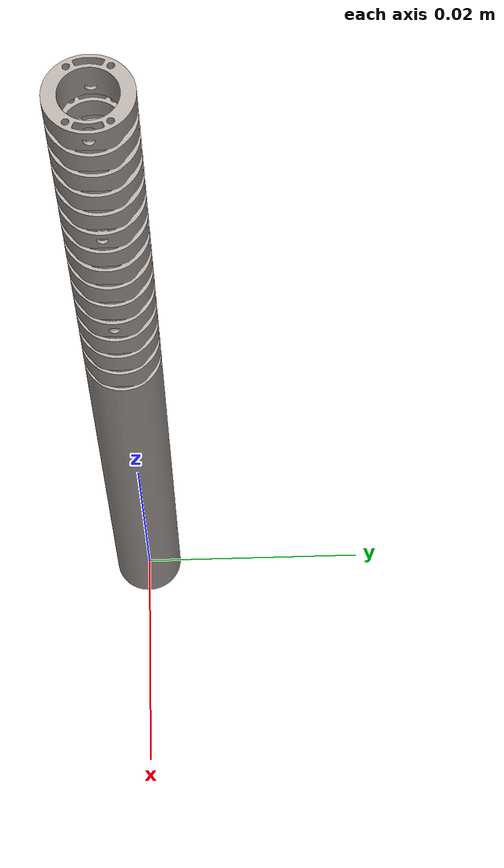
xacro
<?xml version="1.0"?>
<robot xmlns:xacro="http://www.ros.org/wiki/xacro" name="snake">
    <xacro:arg name="initial_positions_file" default="initial_positions.yaml" />

    <!-- Import panda urdf file -->
    <xacro:include filename="$(find snake_description)/urdf/snake_tool.urdf" />

</robot>

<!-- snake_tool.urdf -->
<robot
  name="snake_tool">
  <link
    name="link_00">
    <visual>
      <origin
        xyz="0 0 0"
        rpy="0 0 0" />
      <geometry>
        <mesh
          filename="package://snake_description/meshes/link_00.STL" scale="0.001 0.001 0.001" />
      </geometry>
      <material
        name="">
        <color
          rgba="0.690196078431373 0.658823529411765 0.63921568627451 1" />
      </material>
    </visual>
    <collision>
      <origin
        xyz="0 0 0"
        rpy="0 0 0" />
      <geometry>
        <mesh
          filename="package://snake_description/meshes/link_00.STL" scale="0.001 0.001 0.001" />
      </geometry>
    </collision>
  </link>
  <link
    name="link_01">
    <visual>
      <origin
        xyz="0 0 0"
        rpy="0 0 0" />
      <geometry>
        <mesh
          filename="package://snake_description/meshes/link_01.STL" scale="0.001 0.001 0.001" />
      </geometry>
      <material
        name="">
        <color
          rgba="0.690196078431373 0.658823529411765 0.63921568627451 1" />
      </material>
    </visual>
    <collision>
      <origin
        xyz="0 0 0"
        rpy="0 0 0" />
      <geometry>
        <mesh
          filename="package://snake_description/meshes/link_01.STL" scale="0.001 0.001 0.001" />
      </geometry>
    </collision>
  </link>
  <joint
    name="joint_00"
    type="revolute">
    <origin
      xyz="0 0 0.0410297210859283"
      rpy="0 0 0" />
    <parent
      link="link_00" />
    <child
      link="link_01" />
    <axis
      xyz="0 1 0" />
    <limit
      lower="-0.16"
      upper="0.16"
      effort="0"
      velocity="0" />
  </joint>
  <link
    name="link_02">
    <visual>
      <origin
        xyz="0 0 0"
        rpy="0 0 0" />
      <geometry>
        <mesh
          filename="package://snake_description/meshes/link_02.STL" scale="0.001 0.001 0.001" />
      </geometry>
      <material
        name="">
        <color
          rgba="0.690196078431373 0.658823529411765 0.63921568627451 1" />
      </material>
    </visual>
    <collision>
      <origin
        xyz="0 0 0"
        rpy="0 0 0" />
      <geometry>
        <mesh
          filename="package://snake_description/meshes/link_02.STL" scale="0.001 0.001 0.001" />
      </geometry>
    </collision>
  </link>
  <joint
    name="joint_01"
    type="revolute">
    <origin
      xyz="0 0 0.00132488253734261"
      rpy="0 0 0" />
    <parent
      link="link_01" />
    <child
      link="link_02" />
    <axis
      xyz="0 1 0" />
    <limit
      lower="-0.16"
      upper="0.16"
      effort="0"
      velocity="0" />
  </joint>
  <link
    name="link_03">
    <visual>
      <origin
        xyz="0 0 0"
        rpy="0 0 0" />
      <geometry>
        <mesh
          filename="package://snake_description/meshes/link_03.STL" scale="0.001 0.001 0.001" />
      </geometry>
      <material
        name="">
        <color
          rgba="0.690196078431373 0.658823529411765 0.63921568627451 1" />
      </material>
    </visual>
    <collision>
      <origin
        xyz="0 0 0"
        rpy="0 0 0" />
      <geometry>
        <mesh
          filename="package://snake_description/meshes/link_03.STL" scale="0.001 0.001 0.001" />
      </geometry>
    </collision>
  </link>
  <joint
    name="joint_02"
    type="revolute">
    <origin
      xyz="0 0 0.00131520544017122"
      rpy="0 0 0" />
    <parent
      link="link_02" />
    <child
      link="link_03" />
    <axis
      xyz="0 1 0" />
    <limit
      lower="-0.16"
      upper="0.16"
      effort="0"
      velocity="0" />
  </joint>
  <link
    name="link_04">
    <visual>
      <origin
        xyz="0 0 0"
        rpy="0 0 0" />
      <geometry>
        <mesh
          filename="package://snake_description/meshes/link_04.STL" scale="0.001 0.001 0.001" />
      </geometry>
      <material
        name="">
        <color
          rgba="0.690196078431373 0.658823529411765 0.63921568627451 1" />
      </material>
    </visual>
    <collision>
      <origin
        xyz="0 0 0"
        rpy="0 0 0" />
      <geometry>
        <mesh
          filename="package://snake_description/meshes/link_04.STL" scale="0.001 0.001 0.001" />
      </geometry>
    </collision>
  </link>
  <joint
    name="joint_03"
    type="revolute">
    <origin
      xyz="0 0 0.00130552834300195"
      rpy="0 0 0" />
    <parent
      link="link_03" />
    <child
      link="link_04" />
    <axis
      xyz="0 1 0" />
    <limit
      lower="-0.16"
      upper="0.16"
      effort="0"
      velocity="0" />
  </joint>
  <link
    name="link_05">
    <visual>
      <origin
        xyz="0 0 0"
        rpy="0 0 0" />
      <geometry>
        <mesh
          filename="package://snake_description/meshes/link_05.STL" scale="0.001 0.001 0.001" />
      </geometry>
      <material
        name="">
        <color
          rgba="0.690196078431373 0.658823529411765 0.63921568627451 1" />
      </material>
    </visual>
    <collision>
      <origin
        xyz="0 0 0"
        rpy="0 0 0" />
      <geometry>
        <mesh
          filename="package://snake_description/meshes/link_05.STL" scale="0.001 0.001 0.001" />
      </geometry>
    </collision>
  </link>
  <joint
    name="joint_04"
    type="revolute">
    <origin
      xyz="0 0 0.00129585124582631"
      rpy="0 0 0" />
    <parent
      link="link_04" />
    <child
      link="link_05" />
    <axis
      xyz="0 1 0" />
    <limit
      lower="-0.16"
      upper="0.16"
      effort="0"
      velocity="0" />
  </joint>
  <link
    name="link_06">
    <visual>
      <origin
        xyz="0 0 0"
        rpy="0 0 0" />
      <geometry>
        <mesh
          filename="package://snake_description/meshes/link_06.STL" scale="0.001 0.001 0.001" />
      </geometry>
      <material
        name="">
        <color
          rgba="0.690196078431373 0.658823529411765 0.63921568627451 1" />
      </material>
    </visual>
    <collision>
      <origin
        xyz="0 0 0"
        rpy="0 0 0" />
      <geometry>
        <mesh
          filename="package://snake_description/meshes/link_06.STL" scale="0.001 0.001 0.001" />
      </geometry>
    </collision>
  </link>
  <joint
    name="joint_05"
    type="revolute">
    <origin
      xyz="0 0 0.00128617414865916"
      rpy="0 0 0" />
    <parent
      link="link_05" />
    <child
      link="link_06" />
    <axis
      xyz="0 1 0" />
    <limit
      lower="0"
      upper="0"
      effort="0"
      velocity="0" />
  </joint>
  <link
    name="link_07">
    <visual>
      <origin
        xyz="0 0 0"
        rpy="0 0 0" />
      <geometry>
        <mesh
          filename="package://snake_description/meshes/link_07.STL" scale="0.001 0.001 0.001" />
      </geometry>
      <material
        name="">
        <color
          rgba="0.690196078431373 0.658823529411765 0.63921568627451 1" />
      </material>
    </visual>
    <collision>
      <origin
        xyz="0 0 0"
        rpy="0 0 0" />
      <geometry>
        <mesh
          filename="package://snake_description/meshes/link_07.STL" scale="0.001 0.001 0.001" />
      </geometry>
    </collision>
  </link>
  <joint
    name="joint_06"
    type="revolute">
    <origin
      xyz="0 0 0.00127649705148352"
      rpy="0 0 0" />
    <parent
      link="link_06" />
    <child
      link="link_07" />
    <axis
      xyz="0 1 0" />
    <limit
      lower="-0.16"
      upper="0.16"
      effort="0"
      velocity="0" />
  </joint>
  <link
    name="link_08">
    <visual>
      <origin
        xyz="0 0 0"
        rpy="0 0 0" />
      <geometry>
        <mesh
          filename="package://snake_description/meshes/link_08.STL" scale="0.001 0.001 0.001" />
      </geometry>
      <material
        name="">
        <color
          rgba="0.690196078431373 0.658823529411765 0.63921568627451 1" />
      </material>
    </visual>
    <collision>
      <origin
        xyz="0 0 0"
        rpy="0 0 0" />
      <geometry>
        <mesh
          filename="package://snake_description/meshes/link_08.STL" scale="0.001 0.001 0.001" />
      </geometry>
    </collision>
  </link>
  <joint
    name="joint_07"
    type="revolute">
    <origin
      xyz="0 0 0.00126681995431425"
      rpy="0 0 0" />
    <parent
      link="link_07" />
    <child
      link="link_08" />
    <axis
      xyz="0 1 0" />
    <limit
      lower="-0.16"
      upper="0.16"
      effort="0"
      velocity="0" />
  </joint>
  <link
    name="link_09">
    <visual>
      <origin
        xyz="0 0 0"
        rpy="0 0 0" />
      <geometry>
        <mesh
          filename="package://snake_description/meshes/link_09.STL" scale="0.001 0.001 0.001" />
      </geometry>
      <material
        name="">
        <color
          rgba="0.690196078431373 0.658823529411765 0.63921568627451 1" />
      </material>
    </visual>
    <collision>
      <origin
        xyz="0 0 0"
        rpy="0 0 0" />
      <geometry>
        <mesh
          filename="package://snake_description/meshes/link_09.STL" scale="0.001 0.001 0.001" />
      </geometry>
    </collision>
  </link>
  <joint
    name="joint_08"
    type="revolute">
    <origin
      xyz="0 0 0.00125714285714286"
      rpy="0 0 0" />
    <parent
      link="link_08" />
    <child
      link="link_09" />
    <axis
      xyz="0 1 0" />
    <limit
      lower="-0.16"
      upper="0.16"
      effort="0"
      velocity="0" />
  </joint>
  <link
    name="link_10">
    <visual>
      <origin
        xyz="0 0 0"
        rpy="0 0 0" />
      <geometry>
        <mesh
          filename="package://snake_description/meshes/link_10.STL" scale="0.001 0.001 0.001" />
      </geometry>
      <material
        name="">
        <color
          rgba="0.690196078431373 0.658823529411765 0.63921568627451 1" />
      </material>
    </visual>
    <collision>
      <origin
        xyz="0 0 0"
        rpy="0 0 0" />
      <geometry>
        <mesh
          filename="package://snake_description/meshes/link_10.STL" scale="0.001 0.001 0.001" />
      </geometry>
    </collision>
  </link>
  <joint
    name="joint_09"
    type="revolute">
    <origin
      xyz="0 0 0.00124746575997359"
      rpy="0 0 0" />
    <parent
      link="link_09" />
    <child
      link="link_10" />
    <axis
      xyz="0 1 0" />
    <limit
      lower="-0.16"
      upper="0.16"
      effort="0"
      velocity="0" />
  </joint>
  <link
    name="link_11">
    <visual>
      <origin
        xyz="0 0 0"
        rpy="0 0 0" />
      <geometry>
        <mesh
          filename="package://snake_description/meshes/link_11.STL" scale="0.001 0.001 0.001" />
      </geometry>
      <material
        name="">
        <color
          rgba="0.690196078431373 0.658823529411765 0.63921568627451 1" />
      </material>
    </visual>
    <collision>
      <origin
        xyz="0 0 0"
        rpy="0 0 0" />
      <geometry>
        <mesh
          filename="package://snake_description/meshes/link_11.STL" scale="0.001 0.001 0.001" />
      </geometry>
    </collision>
  </link>
  <joint
    name="joint_10"
    type="revolute">
    <origin
      xyz="0 0 0.00123778866279794"
      rpy="0 0 0" />
    <parent
      link="link_10" />
    <child
      link="link_11" />
    <axis
      xyz="0 1 0" />
    <limit
      lower="-0.16"
      upper="0.16"
      effort="0"
      velocity="0" />
  </joint>
  <link
    name="link_12">
    <visual>
      <origin
        xyz="0 0 0"
        rpy="0 0 0" />
      <geometry>
        <mesh
          filename="package://snake_description/meshes/link_12.STL" scale="0.001 0.001 0.001" />
      </geometry>
      <material
        name="">
        <color
          rgba="0.690196078431373 0.658823529411765 0.63921568627451 1" />
      </material>
    </visual>
    <collision>
      <origin
        xyz="0 0 0"
        rpy="0 0 0" />
      <geometry>
        <mesh
          filename="package://snake_description/meshes/link_12.STL" scale="0.001 0.001 0.001" />
      </geometry>
    </collision>
  </link>
  <joint
    name="joint_11"
    type="revolute">
    <origin
      xyz="0 0 0.00122811156562867"
      rpy="0 0 0" />
    <parent
      link="link_11" />
    <child
      link="link_12" />
    <axis
      xyz="0 1 0" />
    <limit
      lower="-0.16"
      upper="0.16"
      effort="0"
      velocity="0" />
  </joint>
  <link
    name="link_13">
    <visual>
      <origin
        xyz="0 0 0"
        rpy="0 0 0" />
      <geometry>
        <mesh
          filename="package://snake_description/meshes/link_13.STL" scale="0.001 0.001 0.001" />
      </geometry>
      <material
        name="">
        <color
          rgba="0.690196078431373 0.658823529411765 0.63921568627451 1" />
      </material>
    </visual>
    <collision>
      <origin
        xyz="0 0 0"
        rpy="0 0 0" />
      <geometry>
        <mesh
          filename="package://snake_description/meshes/link_13.STL" scale="0.001 0.001 0.001" />
      </geometry>
    </collision>
  </link>
  <joint
    name="joint_12"
    type="revolute">
    <origin
      xyz="0 0 0.00121843446845728"
      rpy="0 0 0" />
    <parent
      link="link_12" />
    <child
      link="link_13" />
    <axis
      xyz="0 1 0" />
    <limit
      lower="-0.16"
      upper="0.16"
      effort="0"
      velocity="0" />
  </joint>
  <link
    name="link_14">
    <visual>
      <origin
        xyz="0 0 0"
        rpy="0 0 0" />
      <geometry>
        <mesh
          filename="package://snake_description/meshes/link_14.STL" scale="0.001 0.001 0.001" />
      </geometry>
      <material
        name="">
        <color
          rgba="0.690196078431373 0.658823529411765 0.63921568627451 1" />
      </material>
    </visual>
    <collision>
      <origin
        xyz="0 0 0"
        rpy="0 0 0" />
      <geometry>
        <mesh
          filename="package://snake_description/meshes/link_14.STL" scale="0.001 0.001 0.001" />
      </geometry>
    </collision>
  </link>
  <joint
    name="joint_13"
    type="revolute">
    <origin
      xyz="0 0 0.00120875737128587"
      rpy="0 0 0" />
    <parent
      link="link_13" />
    <child
      link="link_14" />
    <axis
      xyz="0 1 0" />
    <limit
      lower="-0.16"
      upper="0.16"
      effort="0"
      velocity="0" />
  </joint>
  <link
    name="link_15">
    <visual>
      <origin
        xyz="0 0 0"
        rpy="0 0 0" />
      <geometry>
        <mesh
          filename="package://snake_description/meshes/link_15.STL" scale="0.001 0.001 0.001" />
      </geometry>
      <material
        name="">
        <color
          rgba="0.690196078431373 0.658823529411765 0.63921568627451 1" />
      </material>
    </visual>
    <collision>
      <origin
        xyz="0 0 0"
        rpy="0 0 0" />
      <geometry>
        <mesh
          filename="package://snake_description/meshes/link_15.STL" scale="0.001 0.001 0.001" />
      </geometry>
    </collision>
  </link>
  <joint
    name="joint_14"
    type="revolute">
    <origin
      xyz="0 0 0.00119908027411451"
      rpy="0 0 0" />
    <parent
      link="link_14" />
    <child
      link="link_15" />
    <axis
      xyz="0 1 0" />
    <limit
      lower="-0.16"
      upper="0.16"
      effort="0"
      velocity="0" />
  </joint>
  <link
    name="link_16">
    <visual>
      <origin
        xyz="0 0 0"
        rpy="0 0 0" />
      <geometry>
        <mesh
          filename="package://snake_description/meshes/link_16.STL" scale="0.001 0.001 0.001" />
      </geometry>
      <material
        name="">
        <color
          rgba="0.690196078431373 0.658823529411765 0.63921568627451 1" />
      </material>
    </visual>
    <collision>
      <origin
        xyz="0 0 0"
        rpy="0 0 0" />
      <geometry>
        <mesh
          filename="package://snake_description/meshes/link_16.STL" scale="0.001 0.001 0.001" />
      </geometry>
    </collision>
  </link>
  <joint
    name="joint_15"
    type="revolute">
    <origin
      xyz="0 0 0.0011894031769431"
      rpy="0 0 0" />
    <parent
      link="link_15" />
    <child
      link="link_16" />
    <axis
      xyz="0 1 0" />
    <limit
      lower="-0.16"
      upper="0.16"
      effort="0"
      velocity="0" />
  </joint>
  <link
    name="link_17">
    <visual>
      <origin
        xyz="0 0 0"
        rpy="0 0 0" />
      <geometry>
        <mesh
          filename="package://snake_description/meshes/link_17.STL" scale="0.001 0.001 0.001" />
      </geometry>
      <material
        name="">
        <color
          rgba="0.690196078431373 0.658823529411765 0.63921568627451 1" />
      </material>
    </visual>
    <collision>
      <origin
        xyz="0 0 0"
        rpy="0 0 0" />
      <geometry>
        <mesh
          filename="package://snake_description/meshes/link_17.STL" scale="0.001 0.001 0.001" />
      </geometry>
    </collision>
  </link>
  <joint
    name="joint_16"
    type="revolute">
    <origin
      xyz="0 0 0.0011797260797717"
      rpy="0 0 0" />
    <parent
      link="link_16" />
    <child
      link="link_17" />
    <axis
      xyz="0 1 0" />
    <limit
      lower="-0.16"
      upper="0.16"
      effort="0"
      velocity="0" />
  </joint>
  <link
    name="link_18">
    <visual>
      <origin
        xyz="0 0 0"
        rpy="0 0 0" />
      <geometry>
        <mesh
          filename="package://snake_description/meshes/link_18.STL" scale="0.001 0.001 0.001" />
      </geometry>
      <material
        name="">
        <color
          rgba="0.690196078431373 0.658823529411765 0.63921568627451 1" />
      </material>
    </visual>
    <collision>
      <origin
        xyz="0 0 0"
        rpy="0 0 0" />
      <geometry>
        <mesh
          filename="package://snake_description/meshes/link_18.STL" scale="0.001 0.001 0.001" />
      </geometry>
    </collision>
  </link>
  <joint
    name="joint_17"
    type="revolute">
    <origin
      xyz="0 0 0.00117004898260031"
      rpy="0 0 0" />
    <parent
      link="link_17" />
    <child
      link="link_18" />
    <axis
      xyz="0 1 0" />
    <limit
      lower="-0.16"
      upper="0.16"
      effort="0"
      velocity="0" />
  </joint>
  <link
    name="link_19">
    <visual>
      <origin
        xyz="0 0 0"
        rpy="0 0 0" />
      <geometry>
        <mesh
          filename="package://snake_description/meshes/link_19.STL" scale="0.001 0.001 0.001" />
      </geometry>
      <material
        name="">
        <color
          rgba="0.690196078431373 0.658823529411765 0.63921568627451 1" />
      </material>
    </visual>
    <collision>
      <origin
        xyz="0 0 0"
        rpy="0 0 0" />
      <geometry>
        <mesh
          filename="package://snake_description/meshes/link_19.STL" scale="0.001 0.001 0.001" />
      </geometry>
    </collision>
  </link>
  <joint
    name="joint_18"
    type="revolute">
    <origin
      xyz="0 0 0.00116037188542892"
      rpy="0 0 0" />
    <parent
      link="link_18" />
    <child
      link="link_19" />
    <axis
      xyz="0 1 0" />
    <limit
      lower="-0.16"
      upper="0.16"
      effort="0"
      velocity="0" />
  </joint>
  <link
    name="link_20">
    <visual>
      <origin
        xyz="0 0 0"
        rpy="0 0 0" />
      <geometry>
        <mesh
          filename="package://snake_description/meshes/link_20.STL" scale="0.001 0.001 0.001" />
      </geometry>
      <material
        name="">
        <color
          rgba="0.690196078431373 0.658823529411765 0.63921568627451 1" />
      </material>
    </visual>
    <collision>
      <origin
        xyz="0 0 0"
        rpy="0 0 0" />
      <geometry>
        <mesh
          filename="package://snake_description/meshes/link_20.STL" scale="0.001 0.001 0.001" />
      </geometry>
    </collision>
  </link>
  <joint
    name="joint_19"
    type="revolute">
    <origin
      xyz="0 0 0.00115069478825752"
      rpy="0 0 0" />
    <parent
      link="link_19" />
    <child
      link="link_20" />
    <axis
      xyz="0 1 0" />
    <limit
      lower="-0.16"
      upper="0.16"
      effort="0"
      velocity="0" />
  </joint>
  <link
    name="link_21">
    <visual>
      <origin
        xyz="0 0 0"
        rpy="0 0 0" />
      <geometry>
        <mesh
          filename="package://snake_description/meshes/link_21.STL" scale="0.001 0.001 0.001" />
      </geometry>
      <material
        name="">
        <color
          rgba="0.690196078431373 0.658823529411765 0.63921568627451 1" />
      </material>
    </visual>
    <collision>
      <origin
        xyz="0 0 0"
        rpy="0 0 0" />
      <geometry>
        <mesh
          filename="package://snake_description/meshes/link_21.STL" scale="0.001 0.001 0.001" />
      </geometry>
    </collision>
  </link>
  <joint
    name="joint_20"
    type="revolute">
    <origin
      xyz="0 0 0.00114101769108614"
      rpy="0 0 0" />
    <parent
      link="link_20" />
    <child
      link="link_21" />
    <axis
      xyz="0 1 0" />
    <limit
      lower="-0.16"
      upper="0.16"
      effort="0"
      velocity="0" />
  </joint>
  <link
    name="link_22">
    <visual>
      <origin
        xyz="0 0 0"
        rpy="0 0 0" />
      <geometry>
        <mesh
          filename="package://snake_description/meshes/link_22.STL" scale="0.001 0.001 0.001" />
      </geometry>
      <material
        name="">
        <color
          rgba="0.690196078431373 0.658823529411765 0.63921568627451 1" />
      </material>
    </visual>
    <collision>
      <origin
        xyz="0 0 0"
        rpy="0 0 0" />
      <geometry>
        <mesh
          filename="package://snake_description/meshes/link_22.STL" scale="0.001 0.001 0.001" />
      </geometry>
    </collision>
  </link>
  <joint
    name="joint_21"
    type="revolute">
    <origin
      xyz="0 0 0.00113295011421438"
      rpy="0 0 0" />
    <parent
      link="link_21" />
    <child
      link="link_22" />
    <axis
      xyz="0 1 0" />
    <limit
      lower="-0.16"
      upper="0.16"
      effort="0"
      velocity="0" />
  </joint>
  <link
    name="link_23">
    <visual>
      <origin
        xyz="0 0 0"
        rpy="0 0 0" />
      <geometry>
        <mesh
          filename="package://snake_description/meshes/link_23.STL" scale="0.001 0.001 0.001" />
      </geometry>
      <material
        name="">
        <color
          rgba="0.690196078431373 0.658823529411765 0.63921568627451 1" />
      </material>
    </visual>
    <collision>
      <origin
        xyz="0 0 0"
        rpy="0 0 0" />
      <geometry>
        <mesh
          filename="package://snake_description/meshes/link_23.STL" scale="0.001 0.001 0.001" />
      </geometry>
    </collision>
  </link>
  <joint
    name="joint_22"
    type="revolute">
    <origin
      xyz="0 0 0.00112972108592831"
      rpy="0 0 0" />
    <parent
      link="link_22" />
    <child
      link="link_23" />
    <axis
      xyz="0 1 0" />
    <limit
      lower="-0.16"
      upper="0.16"
      effort="0"
      velocity="0" />
  </joint>
  <link
    name="link_24">
    <visual>
      <origin
        xyz="0 0 0"
        rpy="0 0 0" />
      <geometry>
        <mesh
          filename="package://snake_description/meshes/link_24.STL" scale="0.001 0.001 0.001" />
      </geometry>
      <material
        name="">
        <color
          rgba="0.690196078431373 0.658823529411765 0.63921568627451 1" />
      </material>
    </visual>
    <collision>
      <origin
        xyz="0 0 0"
        rpy="0 0 0" />
      <geometry>
        <mesh
          filename="package://snake_description/meshes/link_24.STL" scale="0.001 0.001 0.001" />
      </geometry>
    </collision>
  </link>
  <joint
    name="joint_23"
    type="revolute">
    <origin
      xyz="0 0 0.00112972108593046"
      rpy="0 0 0" />
    <parent
      link="link_23" />
    <child
      link="link_24" />
    <axis
      xyz="0 1 0" />
    <limit
      lower="-0.16"
      upper="0.16"
      effort="0"
      velocity="0" />
  </joint>
  <link
    name="link_25">
    <visual>
      <origin
        xyz="0 0 0"
        rpy="0 0 0" />
      <geometry>
        <mesh
          filename="package://snake_description/meshes/link_25.STL" scale="0.001 0.001 0.001" />
      </geometry>
      <material
        name="">
        <color
          rgba="0.690196078431373 0.658823529411765 0.63921568627451 1" />
      </material>
    </visual>
    <collision>
      <origin
        xyz="0 0 0"
        rpy="0 0 0" />
      <geometry>
        <mesh
          filename="package://snake_description/meshes/link_25.STL" scale="0.001 0.001 0.001" />
      </geometry>
    </collision>
  </link>
  <joint
    name="joint_24"
    type="revolute">
    <origin
      xyz="0 0 0.00112972108592616"
      rpy="0 0 0" />
    <parent
      link="link_24" />
    <child
      link="link_25" />
    <axis
      xyz="0 1 0" />
    <limit
      lower="-0.16"
      upper="0.16"
      effort="0"
      velocity="0" />
  </joint>
  <link
    name="link_26">
    <visual>
      <origin
        xyz="0 0 0"
        rpy="0 0 0" />
      <geometry>
        <mesh
          filename="package://snake_description/meshes/link_26.STL" scale="0.001 0.001 0.001" />
      </geometry>
      <material
        name="">
        <color
          rgba="0.690196078431373 0.658823529411765 0.63921568627451 1" />
      </material>
    </visual>
    <collision>
      <origin
        xyz="0 0 0"
        rpy="0 0 0" />
      <geometry>
        <mesh
          filename="package://snake_description/meshes/link_26.STL" scale="0.001 0.001 0.001" />
      </geometry>
    </collision>
  </link>
  <joint
    name="joint_25"
    type="revolute">
    <origin
      xyz="0 0 0.00112972108592835"
      rpy="0 0 0" />
    <parent
      link="link_25" />
    <child
      link="link_26" />
    <axis
      xyz="0 1 0" />
    <limit
      lower="-0.16"
      upper="0.16"
      effort="0"
      velocity="0" />
  </joint>
  <link
    name="link_27">
    <visual>
      <origin
        xyz="0 0 0"
        rpy="0 0 0" />
      <geometry>
        <mesh
          filename="package://snake_description/meshes/link_27.STL" scale="0.001 0.001 0.001" />
      </geometry>
      <material
        name="">
        <color
          rgba="0.690196078431373 0.658823529411765 0.63921568627451 1" />
      </material>
    </visual>
    <collision>
      <origin
        xyz="0 0 0"
        rpy="0 0 0" />
      <geometry>
        <mesh
          filename="package://snake_description/meshes/link_27.STL" scale="0.001 0.001 0.001" />
      </geometry>
    </collision>
  </link>
  <joint
    name="joint_26"
    type="revolute">
    <origin
      xyz="0 0 0.00112972108592829"
      rpy="0 0 0" />
    <parent
      link="link_26" />
    <child
      link="link_27" />
    <axis
      xyz="0 1 0" />
    <limit
      lower="-0.16"
      upper="0.16"
      effort="0"
      velocity="0" />
  </joint>
  <link name="link_ee" />
  <joint
    name="joint_27"
    type="fixed">
    <origin
      xyz="0 0 0.0025297210859283"
      rpy="0 0 0" />
    <parent
      link="link_27" />
    <child
      link="link_ee" />
    <axis
      xyz="0 0 0" />
  </joint>
</robot>
